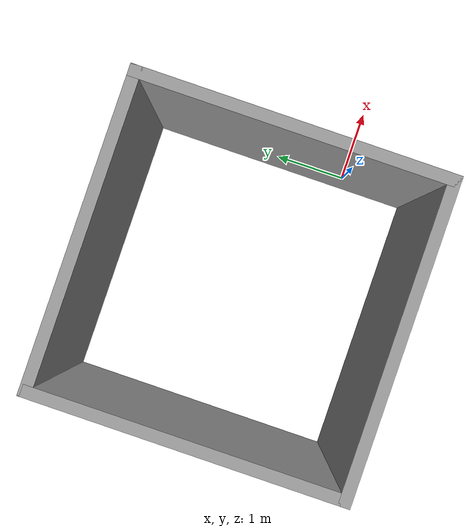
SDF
<?xml version='1.0'?>
<sdf version='1.7'>
  <model name='Shelf3'>
    <pose>-2.00007 0.92365 0 0 -0 0</pose>
    <link name='Wall_54'>
      <collision name='Wall_54_Collision'>
        <geometry>
          <box>
            <size>4 0.15 2.5</size>
          </box>
        </geometry>
        <pose>0 0 1.25 0 -0 0</pose>
      </collision>
      <visual name='Wall_54_Visual'>
        <pose>0 0 1.25 0 -0 0</pose>
        <geometry>
          <box>
            <size>4 0.15 2.5</size>
          </box>
        </geometry>
        <material>
          <script>
            <uri>file://media/materials/scripts/gazebo.material</uri>
            <name>Gazebo/Grey</name>
          </script>
          <ambient>1 1 1 1</ambient>
        </material>
        <meta>
          <layer>0</layer>
        </meta>
      </visual>
      <pose>-7.3e-05 1.925 0 0 -0 0</pose>
    </link>
    <link name='Wall_55'>
      <collision name='Wall_55_Collision'>
        <geometry>
          <box>
            <size>4 0.15 2.5</size>
          </box>
        </geometry>
        <pose>0 0 1.25 0 -0 0</pose>
      </collision>
      <visual name='Wall_55_Visual'>
        <pose>0 0 1.25 0 -0 0</pose>
        <geometry>
          <box>
            <size>4 0.15 2.5</size>
          </box>
        </geometry>
        <material>
          <script>
            <uri>file://media/materials/scripts/gazebo.material</uri>
            <name>Gazebo/Grey</name>
          </script>
          <ambient>1 1 1 1</ambient>
        </material>
        <meta>
          <layer>0</layer>
        </meta>
      </visual>
      <pose>1.92493 0 0 0 -0 -1.5708</pose>
    </link>
    <link name='Wall_56'>
      <collision name='Wall_56_Collision'>
        <geometry>
          <box>
            <size>4 0.15 2.5</size>
          </box>
        </geometry>
        <pose>0 0 1.25 0 -0 0</pose>
      </collision>
      <visual name='Wall_56_Visual'>
        <pose>0 0 1.25 0 -0 0</pose>
        <geometry>
          <box>
            <size>4 0.15 2.5</size>
          </box>
        </geometry>
        <material>
          <script>
            <uri>file://media/materials/scripts/gazebo.material</uri>
            <name>Gazebo/Grey</name>
          </script>
          <ambient>1 1 1 1</ambient>
        </material>
        <meta>
          <layer>0</layer>
        </meta>
      </visual>
      <pose>-7.3e-05 -1.925 0 0 -0 3.14159</pose>
    </link>
    <link name='Wall_57'>
      <collision name='Wall_57_Collision'>
        <geometry>
          <box>
            <size>4 0.15 2.5</size>
          </box>
        </geometry>
        <pose>0 0 1.25 0 -0 0</pose>
      </collision>
      <visual name='Wall_57_Visual'>
        <pose>0 0 1.25 0 -0 0</pose>
        <geometry>
          <box>
            <size>4 0.15 2.5</size>
          </box>
        </geometry>
        <material>
          <script>
            <uri>file://media/materials/scripts/gazebo.material</uri>
            <name>Gazebo/Grey</name>
          </script>
          <ambient>1 1 1 1</ambient>
        </material>
        <meta>
          <layer>0</layer>
        </meta>
      </visual>
      <pose>-1.92507 0 0 0 -0 1.5708</pose>
    </link>
    <static>1</static>
  </model>
</sdf>
